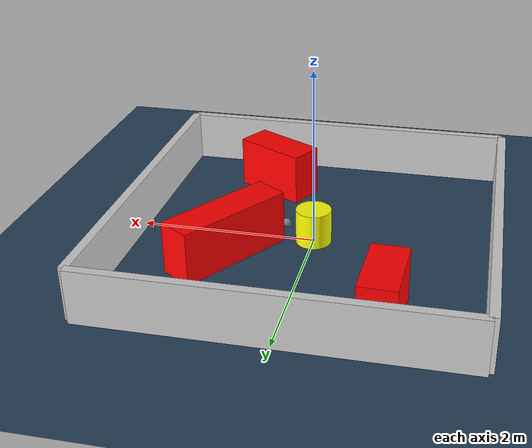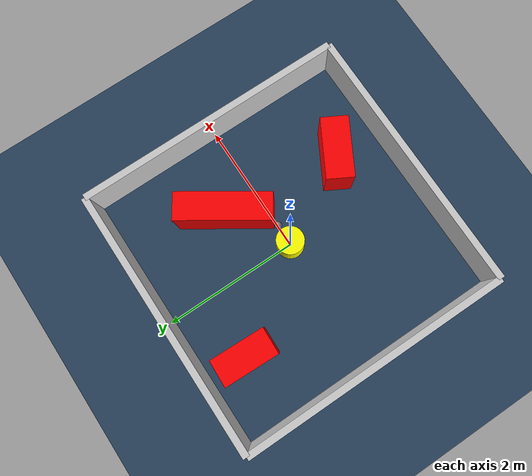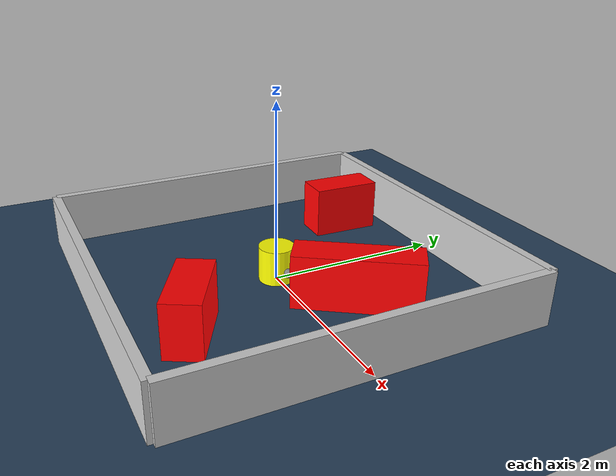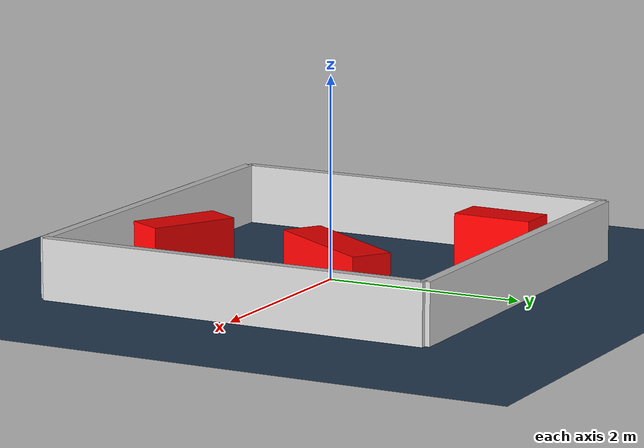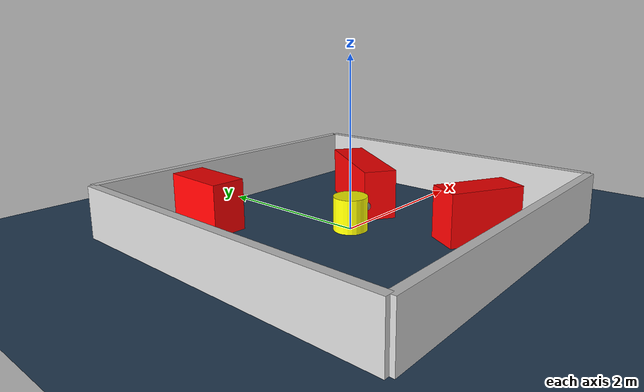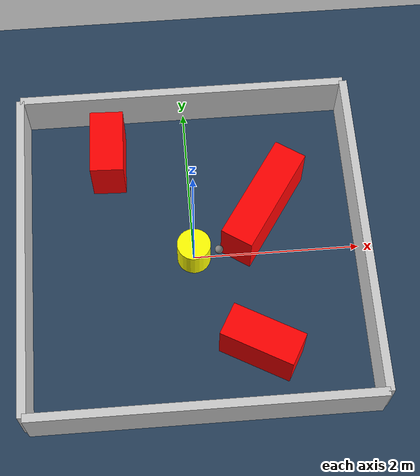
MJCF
<?xml version="1.0" ?>
<mujoco model="generated_environment">
  <option timestep="0.01" integrator="RK4" cone="elliptic"/>
  <default>
    <geom density="1"/>
  </default>
  <asset>
    <texture builtin="gradient" height="3072" rgb1="0.3 0.5 0.7" rgb2="0 0 0" type="skybox" width="512"/>
    <texture builtin="checker" height="300" mark="edge" markrgb="0.8 0.8 0.8" name="groundplane" rgb1="0.2 0.3 0.4" rgb2="0.1 0.2 0.3" type="2d" width="300"/>
    <material name="groundplane" reflectance="0.2" texrepeat="5 5" texture="groundplane" texuniform="true"/>
    <material name="robot" rgba="0.0 1.0 0.0 1"/>
  </asset>
  <worldbody>
    <light dir="0 0 -1" directional="true" pos="0 0 1.5"/>
    <geom condim="4" friction="1.0 0.005 0.001" material="groundplane" name="floor" size="0 0 0.05" type="plane"/>
    <body name="walls">
      <geom name="wall_1" condim="4" pos="-2.0 0.0 0.3" rgba="0.800000011920929 0.800000011920929 0.800000011920929 1.0" size="0.05 2.0 0.3" type="box"/>
      <geom name="wall_2" condim="4" pos="2.0 0.0 0.3" rgba="0.800000011920929 0.800000011920929 0.800000011920929 1.0" size="0.05 2.0 0.3" type="box"/>
      <geom name="wall_3" condim="4" pos="0.0 -2.0 0.3" rgba="0.800000011920929 0.800000011920929 0.800000011920929 1.0" size="2.0 0.05 0.3" type="box"/>
      <geom name="wall_4" condim="4" pos="0.0 2.0 0.3" rgba="0.800000011920929 0.800000011920929 0.800000011920929 1.0" size="2.0 0.05 0.3" type="box"/>
    </body>
    <body name="robot">
      <joint name="joint_x" type="slide" pos="0 0 0" axis="1 0 0"/>
      <joint name="joint_y" type="slide" pos="0 0 0" axis="0 1 0"/>
      <geom name="robot" type="sphere" pos="0.3 0.0 0.2" size="0.05" mass="5." friction="1.0 0.005 0.0001" condim="4" rgba="0.5 0.5 0.5 1.0"/>
      <site name="sensor_ball"/>
    </body>
    <body name="obstacle_movable_1">
      <geom name="obstacle_movable_1" condim="4" pos="0.0 0.0 0.2" euler="0 0 0.0" friction="1.0 0.005 0.001" rgba="1.0 1.0 0.0 1.0" size="0.2 0.2 0.0" type="cylinder" mass="0.1"/>
      <joint type="free"/>
    </body>
    <body name="obstacle_2_static">
      <geom name="obstacle_2_static" condim="4" pos="-0.9611197456227059 1.3588689137040346 0.3" euler="0 0 268.06065126976404" friction="1.0 0.005 0.001" rgba="1 0 0 1" size="0.4025854818247635 0.2 0.3" type="box"/>
    </body>
    <body name="obstacle_3_static">
      <geom name="obstacle_3_static" condim="4" pos="0.8691022416970455 0.511524016705377 0.3" euler="0 0 236.35336762909415" friction="1.0 0.005 0.001" rgba="1 0 0 1" size="0.6808102634589581 0.2 0.3" type="box"/>
    </body>
    <body name="obstacle_4_static">
      <geom name="obstacle_4_static" condim="4" pos="0.6874933299282766 -1.239883867512475 0.3" euler="0 0 151.03170415442" friction="1.0 0.005 0.001" rgba="1 0 0 1" size="0.4442617419111895 0.2 0.3" type="box"/>
    </body>
  </worldbody>
  <actuator>
    <motor name="actuator_x" joint="joint_x" gear="1" ctrlrange="-1 1"/>
    <motor name="actuator_y" joint="joint_y" gear="1" ctrlrange="-1 1"/>
  </actuator>
</mujoco>
